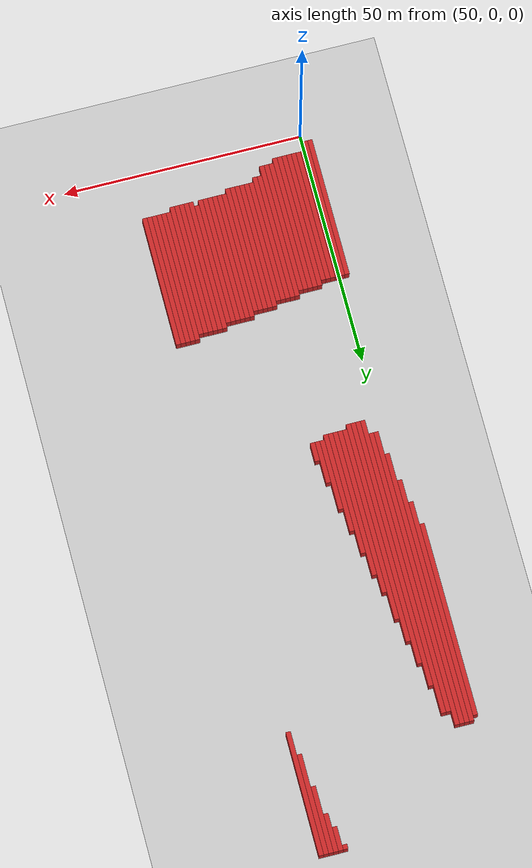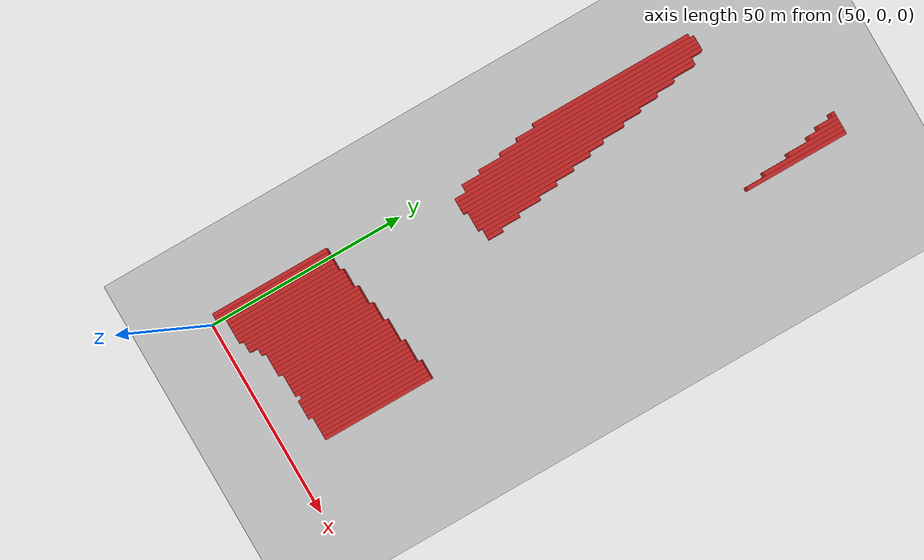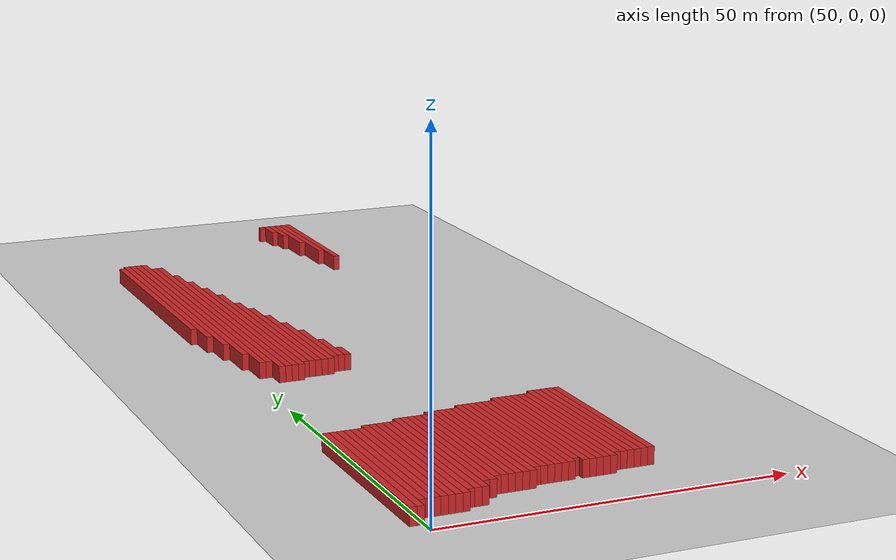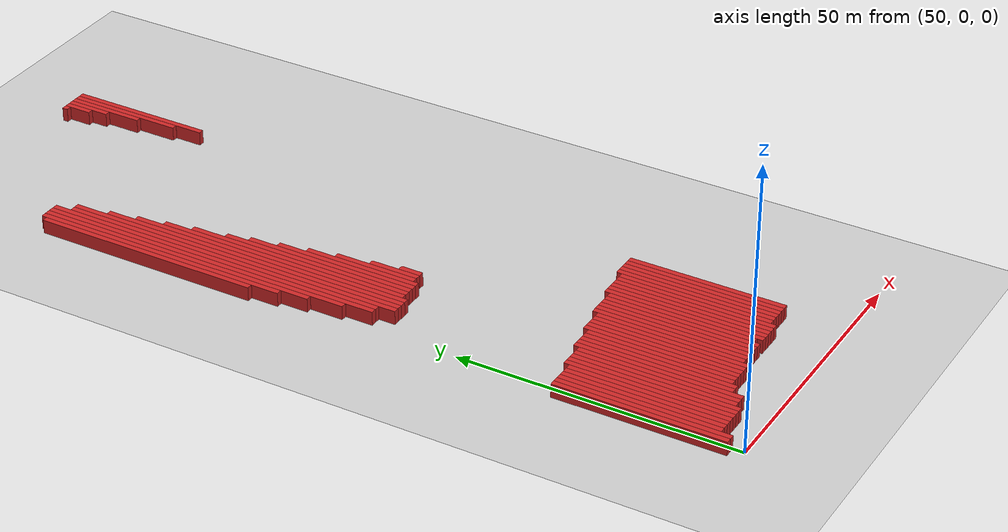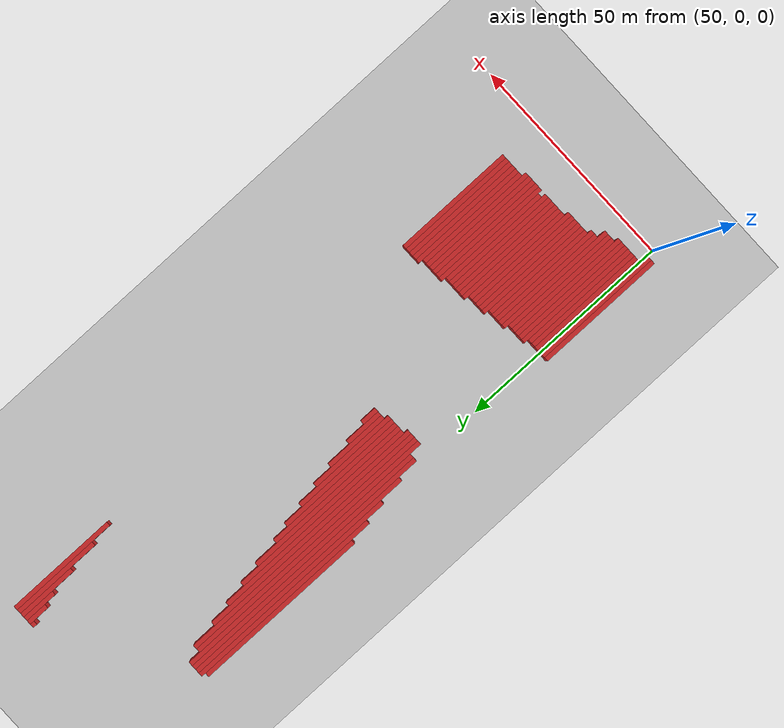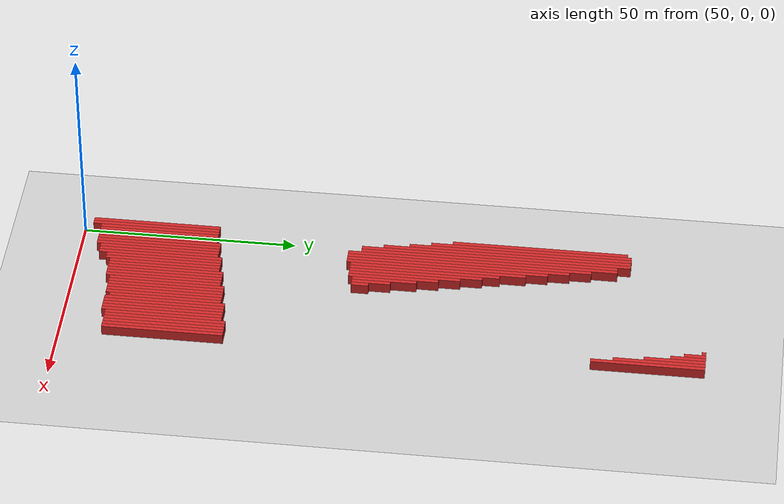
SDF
<sdf version="1.4">
 <world name="1_wall">
  <model name="ground_plane">
   <static>1</static>
   <link name="link">
    <collision name="collision">
     <geometry><plane><normal>0 0 1</normal><size>1000 1000</size></plane></geometry>
     <surface><friction><ode><mu>100</mu><mu2>50</mu2></ode></friction></surface>
    </collision>
    <visual name="visual">
     <cast_shadows>0</cast_shadows>
     <geometry><plane><normal>0 0 1</normal><size>10000 10000</size></plane></geometry>
     <material>
      <script><uri>file://media/materials/scripts/gazebo.material</uri><name>Gazebo/Grey</name></script>
     </material>
    </visual>
    <velocity_decay><linear>0</linear><angular>0</angular></velocity_decay>
   </link>
  </model>
  <model name="Wall_63">
   <static>1</static>
   <link name="Wall_63">
    <collision name="Wall_Collision_63">
     <geometry><box><size>41.0 1.0 2.5</size></box></geometry>
     <pose>0 0 1.25 0 -0 0</pose>
    </collision>
    <visual name="Wall_Visual_63">
     <pose>0 0 1.25 0 -0 0</pose>
     <geometry><box><size>41.0 1.0 2.5</size></box></geometry>
     <material>
      <script><uri>file://media/materials/scripts/gazebo.material</uri><name>Gazebo/Red</name></script>
     </material>
    </visual>
    <velocity_decay><linear>0</linear><angular>0</angular></velocity_decay>
    <pose>47.5 107.5 0 0 0 1.5707963267948966</pose>
   </link>
  </model>
  <model name="Wall_64">
   <static>1</static>
   <link name="Wall_64">
    <collision name="Wall_Collision_64">
     <geometry><box><size>30.0 1.0 2.5</size></box></geometry>
     <pose>0 0 1.25 0 -0 0</pose>
    </collision>
    <visual name="Wall_Visual_64">
     <pose>0 0 1.25 0 -0 0</pose>
     <geometry><box><size>30.0 1.0 2.5</size></box></geometry>
     <material>
      <script><uri>file://media/materials/scripts/gazebo.material</uri><name>Gazebo/Red</name></script>
     </material>
    </visual>
    <velocity_decay><linear>0</linear><angular>0</angular></velocity_decay>
    <pose>48.5 17.0 0 0 0 1.5707963267948966</pose>
   </link>
  </model>
  <model name="Wall_65">
   <static>1</static>
   <link name="Wall_65">
    <collision name="Wall_Collision_65">
     <geometry><box><size>47.0 1.0 2.5</size></box></geometry>
     <pose>0 0 1.25 0 -0 0</pose>
    </collision>
    <visual name="Wall_Visual_65">
     <pose>0 0 1.25 0 -0 0</pose>
     <geometry><box><size>47.0 1.0 2.5</size></box></geometry>
     <material>
      <script><uri>file://media/materials/scripts/gazebo.material</uri><name>Gazebo/Red</name></script>
     </material>
    </visual>
    <velocity_decay><linear>0</linear><angular>0</angular></velocity_decay>
    <pose>48.5 105.5 0 0 0 1.5707963267948966</pose>
   </link>
  </model>
  <model name="Wall_66">
   <static>1</static>
   <link name="Wall_66">
    <collision name="Wall_Collision_66">
     <geometry><box><size>30.0 1.0 2.5</size></box></geometry>
     <pose>0 0 1.25 0 -0 0</pose>
    </collision>
    <visual name="Wall_Visual_66">
     <pose>0 0 1.25 0 -0 0</pose>
     <geometry><box><size>30.0 1.0 2.5</size></box></geometry>
     <material>
      <script><uri>file://media/materials/scripts/gazebo.material</uri><name>Gazebo/Red</name></script>
     </material>
    </visual>
    <velocity_decay><linear>0</linear><angular>0</angular></velocity_decay>
    <pose>49.5 17.0 0 0 0 1.5707963267948966</pose>
   </link>
  </model>
  <model name="Wall_67">
   <static>1</static>
   <link name="Wall_67">
    <collision name="Wall_Collision_67">
     <geometry><box><size>52.0 1.0 2.5</size></box></geometry>
     <pose>0 0 1.25 0 -0 0</pose>
    </collision>
    <visual name="Wall_Visual_67">
     <pose>0 0 1.25 0 -0 0</pose>
     <geometry><box><size>52.0 1.0 2.5</size></box></geometry>
     <material>
      <script><uri>file://media/materials/scripts/gazebo.material</uri><name>Gazebo/Red</name></script>
     </material>
    </visual>
    <velocity_decay><linear>0</linear><angular>0</angular></velocity_decay>
    <pose>49.5 103.0 0 0 0 1.5707963267948966</pose>
   </link>
  </model>
  <model name="Wall_68">
   <static>1</static>
   <link name="Wall_68">
    <collision name="Wall_Collision_68">
     <geometry><box><size>28.0 1.0 2.5</size></box></geometry>
     <pose>0 0 1.25 0 -0 0</pose>
    </collision>
    <visual name="Wall_Visual_68">
     <pose>0 0 1.25 0 -0 0</pose>
     <geometry><box><size>28.0 1.0 2.5</size></box></geometry>
     <material>
      <script><uri>file://media/materials/scripts/gazebo.material</uri><name>Gazebo/Red</name></script>
     </material>
    </visual>
    <velocity_decay><linear>0</linear><angular>0</angular></velocity_decay>
    <pose>50.5 18.0 0 0 0 1.5707963267948966</pose>
   </link>
  </model>
  <model name="Wall_69">
   <static>1</static>
   <link name="Wall_69">
    <collision name="Wall_Collision_69">
     <geometry><box><size>58.0 1.0 2.5</size></box></geometry>
     <pose>0 0 1.25 0 -0 0</pose>
    </collision>
    <visual name="Wall_Visual_69">
     <pose>0 0 1.25 0 -0 0</pose>
     <geometry><box><size>58.0 1.0 2.5</size></box></geometry>
     <material>
      <script><uri>file://media/materials/scripts/gazebo.material</uri><name>Gazebo/Red</name></script>
     </material>
    </visual>
    <velocity_decay><linear>0</linear><angular>0</angular></velocity_decay>
    <pose>50.5 100.0 0 0 0 1.5707963267948966</pose>
   </link>
  </model>
  <model name="Wall_70">
   <static>1</static>
   <link name="Wall_70">
    <collision name="Wall_Collision_70">
     <geometry><box><size>28.0 1.0 2.5</size></box></geometry>
     <pose>0 0 1.25 0 -0 0</pose>
    </collision>
    <visual name="Wall_Visual_70">
     <pose>0 0 1.25 0 -0 0</pose>
     <geometry><box><size>28.0 1.0 2.5</size></box></geometry>
     <material>
      <script><uri>file://media/materials/scripts/gazebo.material</uri><name>Gazebo/Red</name></script>
     </material>
    </visual>
    <velocity_decay><linear>0</linear><angular>0</angular></velocity_decay>
    <pose>51.5 18.0 0 0 0 1.5707963267948966</pose>
   </link>
  </model>
  <model name="Wall_71">
   <static>1</static>
   <link name="Wall_71">
    <collision name="Wall_Collision_71">
     <geometry><box><size>63.0 1.0 2.5</size></box></geometry>
     <pose>0 0 1.25 0 -0 0</pose>
    </collision>
    <visual name="Wall_Visual_71">
     <pose>0 0 1.25 0 -0 0</pose>
     <geometry><box><size>63.0 1.0 2.5</size></box></geometry>
     <material>
      <script><uri>file://media/materials/scripts/gazebo.material</uri><name>Gazebo/Red</name></script>
     </material>
    </visual>
    <velocity_decay><linear>0</linear><angular>0</angular></velocity_decay>
    <pose>51.5 97.5 0 0 0 1.5707963267948966</pose>
   </link>
  </model>
  <model name="Wall_72">
   <static>1</static>
   <link name="Wall_72">
    <collision name="Wall_Collision_72">
     <geometry><box><size>28.0 1.0 2.5</size></box></geometry>
     <pose>0 0 1.25 0 -0 0</pose>
    </collision>
    <visual name="Wall_Visual_72">
     <pose>0 0 1.25 0 -0 0</pose>
     <geometry><box><size>28.0 1.0 2.5</size></box></geometry>
     <material>
      <script><uri>file://media/materials/scripts/gazebo.material</uri><name>Gazebo/Red</name></script>
     </material>
    </visual>
    <velocity_decay><linear>0</linear><angular>0</angular></velocity_decay>
    <pose>52.5 18.0 0 0 0 1.5707963267948966</pose>
   </link>
  </model>
  <model name="Wall_73">
   <static>1</static>
   <link name="Wall_73">
    <collision name="Wall_Collision_73">
     <geometry><box><size>60.0 1.0 2.5</size></box></geometry>
     <pose>0 0 1.25 0 -0 0</pose>
    </collision>
    <visual name="Wall_Visual_73">
     <pose>0 0 1.25 0 -0 0</pose>
     <geometry><box><size>60.0 1.0 2.5</size></box></geometry>
     <material>
      <script><uri>file://media/materials/scripts/gazebo.material</uri><name>Gazebo/Red</name></script>
     </material>
    </visual>
    <velocity_decay><linear>0</linear><angular>0</angular></velocity_decay>
    <pose>52.5 96.0 0 0 0 1.5707963267948966</pose>
   </link>
  </model>
  <model name="Wall_74">
   <static>1</static>
   <link name="Wall_74">
    <collision name="Wall_Collision_74">
     <geometry><box><size>28.0 1.0 2.5</size></box></geometry>
     <pose>0 0 1.25 0 -0 0</pose>
    </collision>
    <visual name="Wall_Visual_74">
     <pose>0 0 1.25 0 -0 0</pose>
     <geometry><box><size>28.0 1.0 2.5</size></box></geometry>
     <material>
      <script><uri>file://media/materials/scripts/gazebo.material</uri><name>Gazebo/Red</name></script>
     </material>
    </visual>
    <velocity_decay><linear>0</linear><angular>0</angular></velocity_decay>
    <pose>53.5 18.0 0 0 0 1.5707963267948966</pose>
   </link>
  </model>
  <model name="Wall_75">
   <static>1</static>
   <link name="Wall_75">
    <collision name="Wall_Collision_75">
     <geometry><box><size>63.0 1.0 2.5</size></box></geometry>
     <pose>0 0 1.25 0 -0 0</pose>
    </collision>
    <visual name="Wall_Visual_75">
     <pose>0 0 1.25 0 -0 0</pose>
     <geometry><box><size>63.0 1.0 2.5</size></box></geometry>
     <material>
      <script><uri>file://media/materials/scripts/gazebo.material</uri><name>Gazebo/Red</name></script>
     </material>
    </visual>
    <velocity_decay><linear>0</linear><angular>0</angular></velocity_decay>
    <pose>53.5 94.5 0 0 0 1.5707963267948966</pose>
   </link>
  </model>
  <model name="Wall_76">
   <static>1</static>
   <link name="Wall_76">
    <collision name="Wall_Collision_76">
     <geometry><box><size>29.0 1.0 2.5</size></box></geometry>
     <pose>0 0 1.25 0 -0 0</pose>
    </collision>
    <visual name="Wall_Visual_76">
     <pose>0 0 1.25 0 -0 0</pose>
     <geometry><box><size>29.0 1.0 2.5</size></box></geometry>
     <material>
      <script><uri>file://media/materials/scripts/gazebo.material</uri><name>Gazebo/Red</name></script>
     </material>
    </visual>
    <velocity_decay><linear>0</linear><angular>0</angular></velocity_decay>
    <pose>54.5 18.5 0 0 0 1.5707963267948966</pose>
   </link>
  </model>
  <model name="Wall_77">
   <static>1</static>
   <link name="Wall_77">
    <collision name="Wall_Collision_77">
     <geometry><box><size>57.0 1.0 2.5</size></box></geometry>
     <pose>0 0 1.25 0 -0 0</pose>
    </collision>
    <visual name="Wall_Visual_77">
     <pose>0 0 1.25 0 -0 0</pose>
     <geometry><box><size>57.0 1.0 2.5</size></box></geometry>
     <material>
      <script><uri>file://media/materials/scripts/gazebo.material</uri><name>Gazebo/Red</name></script>
     </material>
    </visual>
    <velocity_decay><linear>0</linear><angular>0</angular></velocity_decay>
    <pose>54.5 91.5 0 0 0 1.5707963267948966</pose>
   </link>
  </model>
  <model name="Wall_78">
   <static>1</static>
   <link name="Wall_78">
    <collision name="Wall_Collision_78">
     <geometry><box><size>29.0 1.0 2.5</size></box></geometry>
     <pose>0 0 1.25 0 -0 0</pose>
    </collision>
    <visual name="Wall_Visual_78">
     <pose>0 0 1.25 0 -0 0</pose>
     <geometry><box><size>29.0 1.0 2.5</size></box></geometry>
     <material>
      <script><uri>file://media/materials/scripts/gazebo.material</uri><name>Gazebo/Red</name></script>
     </material>
    </visual>
    <velocity_decay><linear>0</linear><angular>0</angular></velocity_decay>
    <pose>55.5 18.5 0 0 0 1.5707963267948966</pose>
   </link>
  </model>
  <model name="Wall_79">
   <static>1</static>
   <link name="Wall_79">
    <collision name="Wall_Collision_79">
     <geometry><box><size>52.0 1.0 2.5</size></box></geometry>
     <pose>0 0 1.25 0 -0 0</pose>
    </collision>
    <visual name="Wall_Visual_79">
     <pose>0 0 1.25 0 -0 0</pose>
     <geometry><box><size>52.0 1.0 2.5</size></box></geometry>
     <material>
      <script><uri>file://media/materials/scripts/gazebo.material</uri><name>Gazebo/Red</name></script>
     </material>
    </visual>
    <velocity_decay><linear>0</linear><angular>0</angular></velocity_decay>
    <pose>55.5 89.0 0 0 0 1.5707963267948966</pose>
   </link>
  </model>
  <model name="Wall_80">
   <static>1</static>
   <link name="Wall_80">
    <collision name="Wall_Collision_80">
     <geometry><box><size>29.0 1.0 2.5</size></box></geometry>
     <pose>0 0 1.25 0 -0 0</pose>
    </collision>
    <visual name="Wall_Visual_80">
     <pose>0 0 1.25 0 -0 0</pose>
     <geometry><box><size>29.0 1.0 2.5</size></box></geometry>
     <material>
      <script><uri>file://media/materials/scripts/gazebo.material</uri><name>Gazebo/Red</name></script>
     </material>
    </visual>
    <velocity_decay><linear>0</linear><angular>0</angular></velocity_decay>
    <pose>56.5 18.5 0 0 0 1.5707963267948966</pose>
   </link>
  </model>
  <model name="Wall_81">
   <static>1</static>
   <link name="Wall_81">
    <collision name="Wall_Collision_81">
     <geometry><box><size>47.0 1.0 2.5</size></box></geometry>
     <pose>0 0 1.25 0 -0 0</pose>
    </collision>
    <visual name="Wall_Visual_81">
     <pose>0 0 1.25 0 -0 0</pose>
     <geometry><box><size>47.0 1.0 2.5</size></box></geometry>
     <material>
      <script><uri>file://media/materials/scripts/gazebo.material</uri><name>Gazebo/Red</name></script>
     </material>
    </visual>
    <velocity_decay><linear>0</linear><angular>0</angular></velocity_decay>
    <pose>56.5 86.5 0 0 0 1.5707963267948966</pose>
   </link>
  </model>
  <model name="Wall_82">
   <static>1</static>
   <link name="Wall_82">
    <collision name="Wall_Collision_82">
     <geometry><box><size>28.0 1.0 2.5</size></box></geometry>
     <pose>0 0 1.25 0 -0 0</pose>
    </collision>
    <visual name="Wall_Visual_82">
     <pose>0 0 1.25 0 -0 0</pose>
     <geometry><box><size>28.0 1.0 2.5</size></box></geometry>
     <material>
      <script><uri>file://media/materials/scripts/gazebo.material</uri><name>Gazebo/Red</name></script>
     </material>
    </visual>
    <velocity_decay><linear>0</linear><angular>0</angular></velocity_decay>
    <pose>57.5 19.0 0 0 0 1.5707963267948966</pose>
   </link>
  </model>
  <model name="Wall_83">
   <static>1</static>
   <link name="Wall_83">
    <collision name="Wall_Collision_83">
     <geometry><box><size>41.0 1.0 2.5</size></box></geometry>
     <pose>0 0 1.25 0 -0 0</pose>
    </collision>
    <visual name="Wall_Visual_83">
     <pose>0 0 1.25 0 -0 0</pose>
     <geometry><box><size>41.0 1.0 2.5</size></box></geometry>
     <material>
      <script><uri>file://media/materials/scripts/gazebo.material</uri><name>Gazebo/Red</name></script>
     </material>
    </visual>
    <velocity_decay><linear>0</linear><angular>0</angular></velocity_decay>
    <pose>57.5 84.5 0 0 0 1.5707963267948966</pose>
   </link>
  </model>
  <model name="Wall_84">
   <static>1</static>
   <link name="Wall_84">
    <collision name="Wall_Collision_84">
     <geometry><box><size>28.0 1.0 2.5</size></box></geometry>
     <pose>0 0 1.25 0 -0 0</pose>
    </collision>
    <visual name="Wall_Visual_84">
     <pose>0 0 1.25 0 -0 0</pose>
     <geometry><box><size>28.0 1.0 2.5</size></box></geometry>
     <material>
      <script><uri>file://media/materials/scripts/gazebo.material</uri><name>Gazebo/Red</name></script>
     </material>
    </visual>
    <velocity_decay><linear>0</linear><angular>0</angular></velocity_decay>
    <pose>58.5 19.0 0 0 0 1.5707963267948966</pose>
   </link>
  </model>
  <model name="Wall_85">
   <static>1</static>
   <link name="Wall_85">
    <collision name="Wall_Collision_85">
     <geometry><box><size>35.0 1.0 2.5</size></box></geometry>
     <pose>0 0 1.25 0 -0 0</pose>
    </collision>
    <visual name="Wall_Visual_85">
     <pose>0 0 1.25 0 -0 0</pose>
     <geometry><box><size>35.0 1.0 2.5</size></box></geometry>
     <material>
      <script><uri>file://media/materials/scripts/gazebo.material</uri><name>Gazebo/Red</name></script>
     </material>
    </visual>
    <velocity_decay><linear>0</linear><angular>0</angular></velocity_decay>
    <pose>58.5 81.5 0 0 0 1.5707963267948966</pose>
   </link>
  </model>
  <model name="Wall_86">
   <static>1</static>
   <link name="Wall_86">
    <collision name="Wall_Collision_86">
     <geometry><box><size>29.0 1.0 2.5</size></box></geometry>
     <pose>0 0 1.25 0 -0 0</pose>
    </collision>
    <visual name="Wall_Visual_86">
     <pose>0 0 1.25 0 -0 0</pose>
     <geometry><box><size>29.0 1.0 2.5</size></box></geometry>
     <material>
      <script><uri>file://media/materials/scripts/gazebo.material</uri><name>Gazebo/Red</name></script>
     </material>
    </visual>
    <velocity_decay><linear>0</linear><angular>0</angular></velocity_decay>
    <pose>59.5 19.5 0 0 0 1.5707963267948966</pose>
   </link>
  </model>
  <model name="Wall_87">
   <static>1</static>
   <link name="Wall_87">
    <collision name="Wall_Collision_87">
     <geometry><box><size>31.0 1.0 2.5</size></box></geometry>
     <pose>0 0 1.25 0 -0 0</pose>
    </collision>
    <visual name="Wall_Visual_87">
     <pose>0 0 1.25 0 -0 0</pose>
     <geometry><box><size>31.0 1.0 2.5</size></box></geometry>
     <material>
      <script><uri>file://media/materials/scripts/gazebo.material</uri><name>Gazebo/Red</name></script>
     </material>
    </visual>
    <velocity_decay><linear>0</linear><angular>0</angular></velocity_decay>
    <pose>59.5 79.5 0 0 0 1.5707963267948966</pose>
   </link>
  </model>
  <model name="Wall_88">
   <static>1</static>
   <link name="Wall_88">
    <collision name="Wall_Collision_88">
     <geometry><box><size>27.0 1.0 2.5</size></box></geometry>
     <pose>0 0 1.25 0 -0 0</pose>
    </collision>
    <visual name="Wall_Visual_88">
     <pose>0 0 1.25 0 -0 0</pose>
     <geometry><box><size>27.0 1.0 2.5</size></box></geometry>
     <material>
      <script><uri>file://media/materials/scripts/gazebo.material</uri><name>Gazebo/Red</name></script>
     </material>
    </visual>
    <velocity_decay><linear>0</linear><angular>0</angular></velocity_decay>
    <pose>60.5 20.5 0 0 0 1.5707963267948966</pose>
   </link>
  </model>
  <model name="Wall_89">
   <static>1</static>
   <link name="Wall_89">
    <collision name="Wall_Collision_89">
     <geometry><box><size>26.0 1.0 2.5</size></box></geometry>
     <pose>0 0 1.25 0 -0 0</pose>
    </collision>
    <visual name="Wall_Visual_89">
     <pose>0 0 1.25 0 -0 0</pose>
     <geometry><box><size>26.0 1.0 2.5</size></box></geometry>
     <material>
      <script><uri>file://media/materials/scripts/gazebo.material</uri><name>Gazebo/Red</name></script>
     </material>
    </visual>
    <velocity_decay><linear>0</linear><angular>0</angular></velocity_decay>
    <pose>60.5 77.0 0 0 0 1.5707963267948966</pose>
   </link>
  </model>
  <model name="Wall_90">
   <static>1</static>
   <link name="Wall_90">
    <collision name="Wall_Collision_90">
     <geometry><box><size>27.0 1.0 2.5</size></box></geometry>
     <pose>0 0 1.25 0 -0 0</pose>
    </collision>
    <visual name="Wall_Visual_90">
     <pose>0 0 1.25 0 -0 0</pose>
     <geometry><box><size>27.0 1.0 2.5</size></box></geometry>
     <material>
      <script><uri>file://media/materials/scripts/gazebo.material</uri><name>Gazebo/Red</name></script>
     </material>
    </visual>
    <velocity_decay><linear>0</linear><angular>0</angular></velocity_decay>
    <pose>61.5 20.5 0 0 0 1.5707963267948966</pose>
   </link>
  </model>
  <model name="Wall_91">
   <static>1</static>
   <link name="Wall_91">
    <collision name="Wall_Collision_91">
     <geometry><box><size>21.0 1.0 2.5</size></box></geometry>
     <pose>0 0 1.25 0 -0 0</pose>
    </collision>
    <visual name="Wall_Visual_91">
     <pose>0 0 1.25 0 -0 0</pose>
     <geometry><box><size>21.0 1.0 2.5</size></box></geometry>
     <material>
      <script><uri>file://media/materials/scripts/gazebo.material</uri><name>Gazebo/Red</name></script>
     </material>
    </visual>
    <velocity_decay><linear>0</linear><angular>0</angular></velocity_decay>
    <pose>61.5 74.5 0 0 0 1.5707963267948966</pose>
   </link>
  </model>
  <model name="Wall_92">
   <static>1</static>
   <link name="Wall_92">
    <collision name="Wall_Collision_92">
     <geometry><box><size>26.0 1.0 2.5</size></box></geometry>
     <pose>0 0 1.25 0 -0 0</pose>
    </collision>
    <visual name="Wall_Visual_92">
     <pose>0 0 1.25 0 -0 0</pose>
     <geometry><box><size>26.0 1.0 2.5</size></box></geometry>
     <material>
      <script><uri>file://media/materials/scripts/gazebo.material</uri><name>Gazebo/Red</name></script>
     </material>
    </visual>
    <velocity_decay><linear>0</linear><angular>0</angular></velocity_decay>
    <pose>62.5 21.0 0 0 0 1.5707963267948966</pose>
   </link>
  </model>
  <model name="Wall_93">
   <static>1</static>
   <link name="Wall_93">
    <collision name="Wall_Collision_93">
     <geometry><box><size>15.0 1.0 2.5</size></box></geometry>
     <pose>0 0 1.25 0 -0 0</pose>
    </collision>
    <visual name="Wall_Visual_93">
     <pose>0 0 1.25 0 -0 0</pose>
     <geometry><box><size>15.0 1.0 2.5</size></box></geometry>
     <material>
      <script><uri>file://media/materials/scripts/gazebo.material</uri><name>Gazebo/Red</name></script>
     </material>
    </visual>
    <velocity_decay><linear>0</linear><angular>0</angular></velocity_decay>
    <pose>62.5 72.5 0 0 0 1.5707963267948966</pose>
   </link>
  </model>
  <model name="Wall_94">
   <static>1</static>
   <link name="Wall_94">
    <collision name="Wall_Collision_94">
     <geometry><box><size>26.0 1.0 2.5</size></box></geometry>
     <pose>0 0 1.25 0 -0 0</pose>
    </collision>
    <visual name="Wall_Visual_94">
     <pose>0 0 1.25 0 -0 0</pose>
     <geometry><box><size>26.0 1.0 2.5</size></box></geometry>
     <material>
      <script><uri>file://media/materials/scripts/gazebo.material</uri><name>Gazebo/Red</name></script>
     </material>
    </visual>
    <velocity_decay><linear>0</linear><angular>0</angular></velocity_decay>
    <pose>63.5 21.0 0 0 0 1.5707963267948966</pose>
   </link>
  </model>
  <model name="Wall_95">
   <static>1</static>
   <link name="Wall_95">
    <collision name="Wall_Collision_95">
     <geometry><box><size>9.0 1.0 2.5</size></box></geometry>
     <pose>0 0 1.25 0 -0 0</pose>
    </collision>
    <visual name="Wall_Visual_95">
     <pose>0 0 1.25 0 -0 0</pose>
     <geometry><box><size>9.0 1.0 2.5</size></box></geometry>
     <material>
      <script><uri>file://media/materials/scripts/gazebo.material</uri><name>Gazebo/Red</name></script>
     </material>
    </visual>
    <velocity_decay><linear>0</linear><angular>0</angular></velocity_decay>
    <pose>63.5 69.5 0 0 0 1.5707963267948966</pose>
   </link>
  </model>
  <model name="Wall_96">
   <static>1</static>
   <link name="Wall_96">
    <collision name="Wall_Collision_96">
     <geometry><box><size>27.0 1.0 2.5</size></box></geometry>
     <pose>0 0 1.25 0 -0 0</pose>
    </collision>
    <visual name="Wall_Visual_96">
     <pose>0 0 1.25 0 -0 0</pose>
     <geometry><box><size>27.0 1.0 2.5</size></box></geometry>
     <material>
      <script><uri>file://media/materials/scripts/gazebo.material</uri><name>Gazebo/Red</name></script>
     </material>
    </visual>
    <velocity_decay><linear>0</linear><angular>0</angular></velocity_decay>
    <pose>64.5 21.5 0 0 0 1.5707963267948966</pose>
   </link>
  </model>
  <model name="Wall_97">
   <static>1</static>
   <link name="Wall_97">
    <collision name="Wall_Collision_97">
     <geometry><box><size>4.0 1.0 2.5</size></box></geometry>
     <pose>0 0 1.25 0 -0 0</pose>
    </collision>
    <visual name="Wall_Visual_97">
     <pose>0 0 1.25 0 -0 0</pose>
     <geometry><box><size>4.0 1.0 2.5</size></box></geometry>
     <material>
      <script><uri>file://media/materials/scripts/gazebo.material</uri><name>Gazebo/Red</name></script>
     </material>
    </visual>
    <velocity_decay><linear>0</linear><angular>0</angular></velocity_decay>
    <pose>64.5 67.0 0 0 0 1.5707963267948966</pose>
   </link>
  </model>
  <model name="Wall_98">
   <static>1</static>
   <link name="Wall_98">
    <collision name="Wall_Collision_98">
     <geometry><box><size>27.0 1.0 2.5</size></box></geometry>
     <pose>0 0 1.25 0 -0 0</pose>
    </collision>
    <visual name="Wall_Visual_98">
     <pose>0 0 1.25 0 -0 0</pose>
     <geometry><box><size>27.0 1.0 2.5</size></box></geometry>
     <material>
      <script><uri>file://media/materials/scripts/gazebo.material</uri><name>Gazebo/Red</name></script>
     </material>
    </visual>
    <velocity_decay><linear>0</linear><angular>0</angular></velocity_decay>
    <pose>65.5 21.5 0 0 0 1.5707963267948966</pose>
   </link>
  </model>
  <model name="Wall_99">
   <static>1</static>
   <link name="Wall_99">
    <collision name="Wall_Collision_99">
     <geometry><box><size>27.0 1.0 2.5</size></box></geometry>
     <pose>0 0 1.25 0 -0 0</pose>
    </collision>
    <visual name="Wall_Visual_99">
     <pose>0 0 1.25 0 -0 0</pose>
     <geometry><box><size>27.0 1.0 2.5</size></box></geometry>
     <material>
      <script><uri>file://media/materials/scripts/gazebo.material</uri><name>Gazebo/Red</name></script>
     </material>
    </visual>
    <velocity_decay><linear>0</linear><angular>0</angular></velocity_decay>
    <pose>66.5 21.5 0 0 0 1.5707963267948966</pose>
   </link>
  </model>
  <model name="Wall_100">
   <static>1</static>
   <link name="Wall_100">
    <collision name="Wall_Collision_100">
     <geometry><box><size>27.0 1.0 2.5</size></box></geometry>
     <pose>0 0 1.25 0 -0 0</pose>
    </collision>
    <visual name="Wall_Visual_100">
     <pose>0 0 1.25 0 -0 0</pose>
     <geometry><box><size>27.0 1.0 2.5</size></box></geometry>
     <material>
      <script><uri>file://media/materials/scripts/gazebo.material</uri><name>Gazebo/Red</name></script>
     </material>
    </visual>
    <velocity_decay><linear>0</linear><angular>0</angular></velocity_decay>
    <pose>67.5 21.5 0 0 0 1.5707963267948966</pose>
   </link>
  </model>
  <model name="Wall_101">
   <static>1</static>
   <link name="Wall_101">
    <collision name="Wall_Collision_101">
     <geometry><box><size>26.0 1.0 2.5</size></box></geometry>
     <pose>0 0 1.25 0 -0 0</pose>
    </collision>
    <visual name="Wall_Visual_101">
     <pose>0 0 1.25 0 -0 0</pose>
     <geometry><box><size>26.0 1.0 2.5</size></box></geometry>
     <material>
      <script><uri>file://media/materials/scripts/gazebo.material</uri><name>Gazebo/Red</name></script>
     </material>
    </visual>
    <velocity_decay><linear>0</linear><angular>0</angular></velocity_decay>
    <pose>68.5 22.0 0 0 0 1.5707963267948966</pose>
   </link>
  </model>
  <model name="Wall_102">
   <static>1</static>
   <link name="Wall_102">
    <collision name="Wall_Collision_102">
     <geometry><box><size>27.0 1.0 2.5</size></box></geometry>
     <pose>0 0 1.25 0 -0 0</pose>
    </collision>
    <visual name="Wall_Visual_102">
     <pose>0 0 1.25 0 -0 0</pose>
     <geometry><box><size>27.0 1.0 2.5</size></box></geometry>
     <material>
      <script><uri>file://media/materials/scripts/gazebo.material</uri><name>Gazebo/Red</name></script>
     </material>
    </visual>
    <velocity_decay><linear>0</linear><angular>0</angular></velocity_decay>
    <pose>69.5 22.5 0 0 0 1.5707963267948966</pose>
   </link>
  </model>
  <model name="Wall_103">
   <static>1</static>
   <link name="Wall_103">
    <collision name="Wall_Collision_103">
     <geometry><box><size>27.0 1.0 2.5</size></box></geometry>
     <pose>0 0 1.25 0 -0 0</pose>
    </collision>
    <visual name="Wall_Visual_103">
     <pose>0 0 1.25 0 -0 0</pose>
     <geometry><box><size>27.0 1.0 2.5</size></box></geometry>
     <material>
      <script><uri>file://media/materials/scripts/gazebo.material</uri><name>Gazebo/Red</name></script>
     </material>
    </visual>
    <velocity_decay><linear>0</linear><angular>0</angular></velocity_decay>
    <pose>70.5 22.5 0 0 0 1.5707963267948966</pose>
   </link>
  </model>
  <model name="Wall_104">
   <static>1</static>
   <link name="Wall_104">
    <collision name="Wall_Collision_104">
     <geometry><box><size>27.0 1.0 2.5</size></box></geometry>
     <pose>0 0 1.25 0 -0 0</pose>
    </collision>
    <visual name="Wall_Visual_104">
     <pose>0 0 1.25 0 -0 0</pose>
     <geometry><box><size>27.0 1.0 2.5</size></box></geometry>
     <material>
      <script><uri>file://media/materials/scripts/gazebo.material</uri><name>Gazebo/Red</name></script>
     </material>
    </visual>
    <velocity_decay><linear>0</linear><angular>0</angular></velocity_decay>
    <pose>71.5 22.5 0 0 0 1.5707963267948966</pose>
   </link>
  </model>
  <model name="Wall_105">
   <static>1</static>
   <link name="Wall_105">
    <collision name="Wall_Collision_105">
     <geometry><box><size>27.0 1.0 2.5</size></box></geometry>
     <pose>0 0 1.25 0 -0 0</pose>
    </collision>
    <visual name="Wall_Visual_105">
     <pose>0 0 1.25 0 -0 0</pose>
     <geometry><box><size>27.0 1.0 2.5</size></box></geometry>
     <material>
      <script><uri>file://media/materials/scripts/gazebo.material</uri><name>Gazebo/Red</name></script>
     </material>
    </visual>
    <velocity_decay><linear>0</linear><angular>0</angular></velocity_decay>
    <pose>72.5 22.5 0 0 0 1.5707963267948966</pose>
   </link>
  </model>
  <model name="Wall_106">
   <static>1</static>
   <link name="Wall_106">
    <collision name="Wall_Collision_106">
     <geometry><box><size>27.0 1.0 2.5</size></box></geometry>
     <pose>0 0 1.25 0 -0 0</pose>
    </collision>
    <visual name="Wall_Visual_106">
     <pose>0 0 1.25 0 -0 0</pose>
     <geometry><box><size>27.0 1.0 2.5</size></box></geometry>
     <material>
      <script><uri>file://media/materials/scripts/gazebo.material</uri><name>Gazebo/Red</name></script>
     </material>
    </visual>
    <velocity_decay><linear>0</linear><angular>0</angular></velocity_decay>
    <pose>73.5 22.5 0 0 0 1.5707963267948966</pose>
   </link>
  </model>
  <model name="Wall_107">
   <static>1</static>
   <link name="Wall_107">
    <collision name="Wall_Collision_107">
     <geometry><box><size>26.0 1.0 2.5</size></box></geometry>
     <pose>0 0 1.25 0 -0 0</pose>
    </collision>
    <visual name="Wall_Visual_107">
     <pose>0 0 1.25 0 -0 0</pose>
     <geometry><box><size>26.0 1.0 2.5</size></box></geometry>
     <material>
      <script><uri>file://media/materials/scripts/gazebo.material</uri><name>Gazebo/Red</name></script>
     </material>
    </visual>
    <velocity_decay><linear>0</linear><angular>0</angular></velocity_decay>
    <pose>74.5 23.0 0 0 0 1.5707963267948966</pose>
   </link>
  </model>
  <model name="Wall_108">
   <static>1</static>
   <link name="Wall_108">
    <collision name="Wall_Collision_108">
     <geometry><box><size>28.0 1.0 2.5</size></box></geometry>
     <pose>0 0 1.25 0 -0 0</pose>
    </collision>
    <visual name="Wall_Visual_108">
     <pose>0 0 1.25 0 -0 0</pose>
     <geometry><box><size>28.0 1.0 2.5</size></box></geometry>
     <material>
      <script><uri>file://media/materials/scripts/gazebo.material</uri><name>Gazebo/Red</name></script>
     </material>
    </visual>
    <velocity_decay><linear>0</linear><angular>0</angular></velocity_decay>
    <pose>75.5 23.0 0 0 0 1.5707963267948966</pose>
   </link>
  </model>
  <model name="Wall_109">
   <static>1</static>
   <link name="Wall_109">
    <collision name="Wall_Collision_109">
     <geometry><box><size>28.0 1.0 2.5</size></box></geometry>
     <pose>0 0 1.25 0 -0 0</pose>
    </collision>
    <visual name="Wall_Visual_109">
     <pose>0 0 1.25 0 -0 0</pose>
     <geometry><box><size>28.0 1.0 2.5</size></box></geometry>
     <material>
      <script><uri>file://media/materials/scripts/gazebo.material</uri><name>Gazebo/Red</name></script>
     </material>
    </visual>
    <velocity_decay><linear>0</linear><angular>0</angular></velocity_decay>
    <pose>76.5 23.0 0 0 0 1.5707963267948966</pose>
   </link>
  </model>
  <model name="Wall_110">
   <static>1</static>
   <link name="Wall_110">
    <collision name="Wall_Collision_110">
     <geometry><box><size>28.0 1.0 2.5</size></box></geometry>
     <pose>0 0 1.25 0 -0 0</pose>
    </collision>
    <visual name="Wall_Visual_110">
     <pose>0 0 1.25 0 -0 0</pose>
     <geometry><box><size>28.0 1.0 2.5</size></box></geometry>
     <material>
      <script><uri>file://media/materials/scripts/gazebo.material</uri><name>Gazebo/Red</name></script>
     </material>
    </visual>
    <velocity_decay><linear>0</linear><angular>0</angular></velocity_decay>
    <pose>77.5 23.0 0 0 0 1.5707963267948966</pose>
   </link>
  </model>
  <model name="Wall_111">
   <static>1</static>
   <link name="Wall_111">
    <collision name="Wall_Collision_111">
     <geometry><box><size>28.0 1.0 2.5</size></box></geometry>
     <pose>0 0 1.25 0 -0 0</pose>
    </collision>
    <visual name="Wall_Visual_111">
     <pose>0 0 1.25 0 -0 0</pose>
     <geometry><box><size>28.0 1.0 2.5</size></box></geometry>
     <material>
      <script><uri>file://media/materials/scripts/gazebo.material</uri><name>Gazebo/Red</name></script>
     </material>
    </visual>
    <velocity_decay><linear>0</linear><angular>0</angular></velocity_decay>
    <pose>78.5 23.0 0 0 0 1.5707963267948966</pose>
   </link>
  </model>
  <model name="Wall_112">
   <static>1</static>
   <link name="Wall_112">
    <collision name="Wall_Collision_112">
     <geometry><box><size>28.0 1.0 2.5</size></box></geometry>
     <pose>0 0 1.25 0 -0 0</pose>
    </collision>
    <visual name="Wall_Visual_112">
     <pose>0 0 1.25 0 -0 0</pose>
     <geometry><box><size>28.0 1.0 2.5</size></box></geometry>
     <material>
      <script><uri>file://media/materials/scripts/gazebo.material</uri><name>Gazebo/Red</name></script>
     </material>
    </visual>
    <velocity_decay><linear>0</linear><angular>0</angular></velocity_decay>
    <pose>79.5 23.0 0 0 0 1.5707963267948966</pose>
   </link>
  </model>
  <model name="Wall_113">
   <static>1</static>
   <link name="Wall_113">
    <collision name="Wall_Collision_113">
     <geometry><box><size>1.0 1.0 2.5</size></box></geometry>
     <pose>0 0 1.25 0 -0 0</pose>
    </collision>
    <visual name="Wall_Visual_113">
     <pose>0 0 1.25 0 -0 0</pose>
     <geometry><box><size>1.0 1.0 2.5</size></box></geometry>
     <material>
      <script><uri>file://media/materials/scripts/gazebo.material</uri><name>Gazebo/Red</name></script>
     </material>
    </visual>
    <velocity_decay><linear>0</linear><angular>0</angular></velocity_decay>
    <pose>79.5 147.5 0 0 0 1.5707963267948966</pose>
   </link>
  </model>
  <model name="Wall_114">
   <static>1</static>
   <link name="Wall_114">
    <collision name="Wall_Collision_114">
     <geometry><box><size>27.0 1.0 2.5</size></box></geometry>
     <pose>0 0 1.25 0 -0 0</pose>
    </collision>
    <visual name="Wall_Visual_114">
     <pose>0 0 1.25 0 -0 0</pose>
     <geometry><box><size>27.0 1.0 2.5</size></box></geometry>
     <material>
      <script><uri>file://media/materials/scripts/gazebo.material</uri><name>Gazebo/Red</name></script>
     </material>
    </visual>
    <velocity_decay><linear>0</linear><angular>0</angular></velocity_decay>
    <pose>80.5 23.5 0 0 0 1.5707963267948966</pose>
   </link>
  </model>
  <model name="Wall_115">
   <static>1</static>
   <link name="Wall_115">
    <collision name="Wall_Collision_115">
     <geometry><box><size>5.0 1.0 2.5</size></box></geometry>
     <pose>0 0 1.25 0 -0 0</pose>
    </collision>
    <visual name="Wall_Visual_115">
     <pose>0 0 1.25 0 -0 0</pose>
     <geometry><box><size>5.0 1.0 2.5</size></box></geometry>
     <material>
      <script><uri>file://media/materials/scripts/gazebo.material</uri><name>Gazebo/Red</name></script>
     </material>
    </visual>
    <velocity_decay><linear>0</linear><angular>0</angular></velocity_decay>
    <pose>80.5 145.5 0 0 0 1.5707963267948966</pose>
   </link>
  </model>
  <model name="Wall_116">
   <static>1</static>
   <link name="Wall_116">
    <collision name="Wall_Collision_116">
     <geometry><box><size>28.0 1.0 2.5</size></box></geometry>
     <pose>0 0 1.25 0 -0 0</pose>
    </collision>
    <visual name="Wall_Visual_116">
     <pose>0 0 1.25 0 -0 0</pose>
     <geometry><box><size>28.0 1.0 2.5</size></box></geometry>
     <material>
      <script><uri>file://media/materials/scripts/gazebo.material</uri><name>Gazebo/Red</name></script>
     </material>
    </visual>
    <velocity_decay><linear>0</linear><angular>0</angular></velocity_decay>
    <pose>81.5 24.0 0 0 0 1.5707963267948966</pose>
   </link>
  </model>
  <model name="Wall_117">
   <static>1</static>
   <link name="Wall_117">
    <collision name="Wall_Collision_117">
     <geometry><box><size>8.0 1.0 2.5</size></box></geometry>
     <pose>0 0 1.25 0 -0 0</pose>
    </collision>
    <visual name="Wall_Visual_117">
     <pose>0 0 1.25 0 -0 0</pose>
     <geometry><box><size>8.0 1.0 2.5</size></box></geometry>
     <material>
      <script><uri>file://media/materials/scripts/gazebo.material</uri><name>Gazebo/Red</name></script>
     </material>
    </visual>
    <velocity_decay><linear>0</linear><angular>0</angular></velocity_decay>
    <pose>81.5 144.0 0 0 0 1.5707963267948966</pose>
   </link>
  </model>
  <model name="Wall_118">
   <static>1</static>
   <link name="Wall_118">
    <collision name="Wall_Collision_118">
     <geometry><box><size>28.0 1.0 2.5</size></box></geometry>
     <pose>0 0 1.25 0 -0 0</pose>
    </collision>
    <visual name="Wall_Visual_118">
     <pose>0 0 1.25 0 -0 0</pose>
     <geometry><box><size>28.0 1.0 2.5</size></box></geometry>
     <material>
      <script><uri>file://media/materials/scripts/gazebo.material</uri><name>Gazebo/Red</name></script>
     </material>
    </visual>
    <velocity_decay><linear>0</linear><angular>0</angular></velocity_decay>
    <pose>82.5 24.0 0 0 0 1.5707963267948966</pose>
   </link>
  </model>
  <model name="Wall_119">
   <static>1</static>
   <link name="Wall_119">
    <collision name="Wall_Collision_119">
     <geometry><box><size>14.0 1.0 2.5</size></box></geometry>
     <pose>0 0 1.25 0 -0 0</pose>
    </collision>
    <visual name="Wall_Visual_119">
     <pose>0 0 1.25 0 -0 0</pose>
     <geometry><box><size>14.0 1.0 2.5</size></box></geometry>
     <material>
      <script><uri>file://media/materials/scripts/gazebo.material</uri><name>Gazebo/Red</name></script>
     </material>
    </visual>
    <velocity_decay><linear>0</linear><angular>0</angular></velocity_decay>
    <pose>82.5 141.0 0 0 0 1.5707963267948966</pose>
   </link>
  </model>
  <model name="Wall_120">
   <static>1</static>
   <link name="Wall_120">
    <collision name="Wall_Collision_120">
     <geometry><box><size>28.0 1.0 2.5</size></box></geometry>
     <pose>0 0 1.25 0 -0 0</pose>
    </collision>
    <visual name="Wall_Visual_120">
     <pose>0 0 1.25 0 -0 0</pose>
     <geometry><box><size>28.0 1.0 2.5</size></box></geometry>
     <material>
      <script><uri>file://media/materials/scripts/gazebo.material</uri><name>Gazebo/Red</name></script>
     </material>
    </visual>
    <velocity_decay><linear>0</linear><angular>0</angular></velocity_decay>
    <pose>83.5 24.0 0 0 0 1.5707963267948966</pose>
   </link>
  </model>
  <model name="Wall_121">
   <static>1</static>
   <link name="Wall_121">
    <collision name="Wall_Collision_121">
     <geometry><box><size>21.0 1.0 2.5</size></box></geometry>
     <pose>0 0 1.25 0 -0 0</pose>
    </collision>
    <visual name="Wall_Visual_121">
     <pose>0 0 1.25 0 -0 0</pose>
     <geometry><box><size>21.0 1.0 2.5</size></box></geometry>
     <material>
      <script><uri>file://media/materials/scripts/gazebo.material</uri><name>Gazebo/Red</name></script>
     </material>
    </visual>
    <velocity_decay><linear>0</linear><angular>0</angular></velocity_decay>
    <pose>83.5 137.5 0 0 0 1.5707963267948966</pose>
   </link>
  </model>
  <model name="Wall_122">
   <static>1</static>
   <link name="Wall_122">
    <collision name="Wall_Collision_122">
     <geometry><box><size>28.0 1.0 2.5</size></box></geometry>
     <pose>0 0 1.25 0 -0 0</pose>
    </collision>
    <visual name="Wall_Visual_122">
     <pose>0 0 1.25 0 -0 0</pose>
     <geometry><box><size>28.0 1.0 2.5</size></box></geometry>
     <material>
      <script><uri>file://media/materials/scripts/gazebo.material</uri><name>Gazebo/Red</name></script>
     </material>
    </visual>
    <velocity_decay><linear>0</linear><angular>0</angular></velocity_decay>
    <pose>84.5 24.0 0 0 0 1.5707963267948966</pose>
   </link>
  </model>
  <model name="Wall_123">
   <static>1</static>
   <link name="Wall_123">
    <collision name="Wall_Collision_123">
     <geometry><box><size>26.0 1.0 2.5</size></box></geometry>
     <pose>0 0 1.25 0 -0 0</pose>
    </collision>
    <visual name="Wall_Visual_123">
     <pose>0 0 1.25 0 -0 0</pose>
     <geometry><box><size>26.0 1.0 2.5</size></box></geometry>
     <material>
      <script><uri>file://media/materials/scripts/gazebo.material</uri><name>Gazebo/Red</name></script>
     </material>
    </visual>
    <velocity_decay><linear>0</linear><angular>0</angular></velocity_decay>
    <pose>84.5 135.0 0 0 0 1.5707963267948966</pose>
   </link>
  </model>
  <model name="Wall_124">
   <static>1</static>
   <link name="Wall_124">
    <collision name="Wall_Collision_124">
     <geometry><box><size>28.0 1.0 2.5</size></box></geometry>
     <pose>0 0 1.25 0 -0 0</pose>
    </collision>
    <visual name="Wall_Visual_124">
     <pose>0 0 1.25 0 -0 0</pose>
     <geometry><box><size>28.0 1.0 2.5</size></box></geometry>
     <material>
      <script><uri>file://media/materials/scripts/gazebo.material</uri><name>Gazebo/Red</name></script>
     </material>
    </visual>
    <velocity_decay><linear>0</linear><angular>0</angular></velocity_decay>
    <pose>85.5 24.0 0 0 0 1.5707963267948966</pose>
   </link>
  </model>
 </world>
</sdf>
